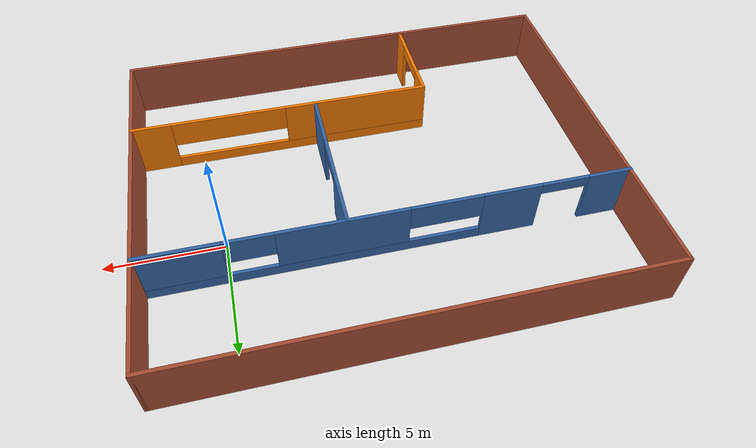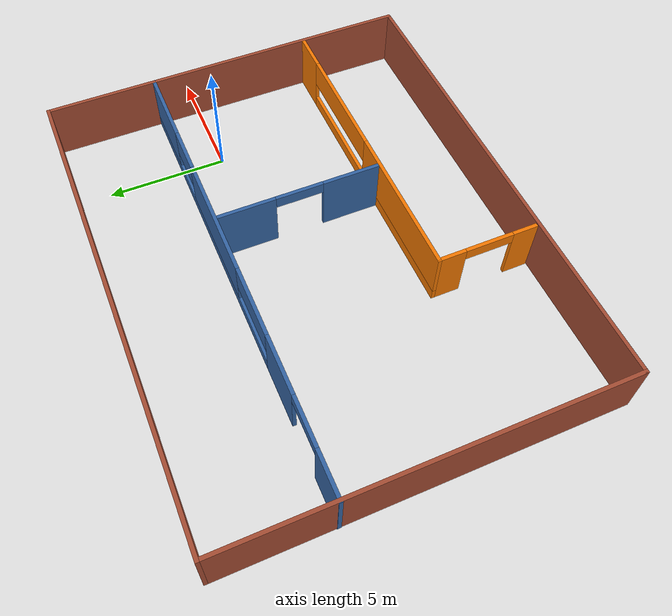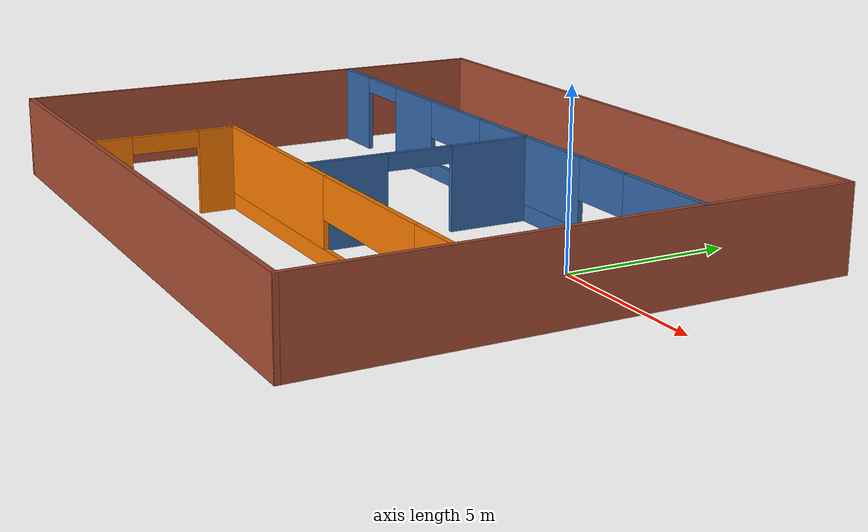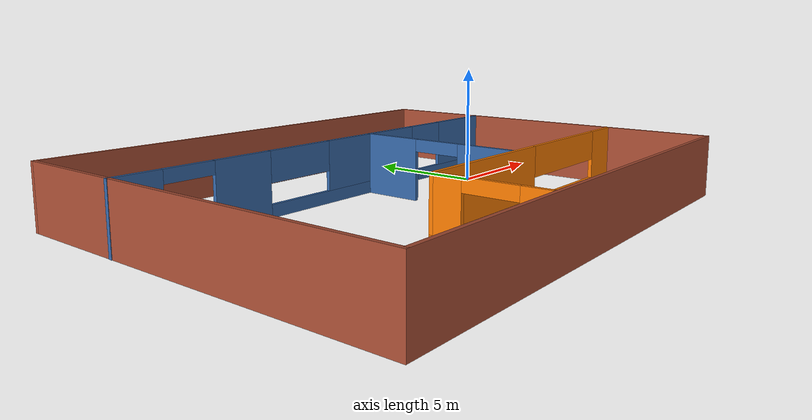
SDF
<?xml version='1.0'?>
<sdf version='1.7'>
  <model name='model'>
    <pose>-6.64054 -1.58835 0 0 -0 0</pose>
    <link name='Wall_0'>
      <collision name='Wall_0_Collision'>
        <geometry>
          <box>
            <size>20 0.15 2.5</size>
          </box>
        </geometry>
        <pose>0 0 1.25 0 -0 0</pose>
      </collision>
      <visual name='Wall_0_Visual'>
        <pose>0 0 1.25 0 -0 0</pose>
        <geometry>
          <box>
            <size>20 0.15 2.5</size>
          </box>
        </geometry>
        <material>
          <script>
            <uri>file://media/materials/scripts/gazebo.material</uri>
            <name>Gazebo/Bricks</name>
          </script>
          <ambient>1 1 1 1</ambient>
        </material>
        <meta>
          <layer>0</layer>
        </meta>
      </visual>
      <pose>0.010396 7.925 0 0 -0 0</pose>
    </link>
    <link name='Wall_1'>
      <collision name='Wall_1_Collision'>
        <geometry>
          <box>
            <size>16 0.15 2.5</size>
          </box>
        </geometry>
        <pose>0 0 1.25 0 -0 0</pose>
      </collision>
      <visual name='Wall_1_Visual'>
        <pose>0 0 1.25 0 -0 0</pose>
        <geometry>
          <box>
            <size>16 0.15 2.5</size>
          </box>
        </geometry>
        <material>
          <script>
            <uri>file://media/materials/scripts/gazebo.material</uri>
            <name>Gazebo/Bricks</name>
          </script>
          <ambient>1 1 1 1</ambient>
        </material>
        <meta>
          <layer>0</layer>
        </meta>
      </visual>
      <pose>9.9354 -0 0 0 -0 -1.5708</pose>
    </link>
    <link name='Wall_12'>
      <pose>3.37374 -3.64545 0 0 -0 3.14159</pose>
      <visual name='Wall_12_Visual_0'>
        <pose>-5.74309 0 1.25 0 -0 0</pose>
        <geometry>
          <box>
            <size>1.76382 0.15 2.5</size>
          </box>
        </geometry>
        <material>
          <script>
            <uri>file://media/materials/scripts/gazebo.material</uri>
            <name>Gazebo/Grey</name>
          </script>
          <ambient>0.960784 0.47451 0 1</ambient>
        </material>
        <meta>
          <layer>0</layer>
        </meta>
      </visual>
      <collision name='Wall_12_Collision_0'>
        <geometry>
          <box>
            <size>1.76382 0.15 2.5</size>
          </box>
        </geometry>
        <pose>-5.74309 0 1.25 0 -0 0</pose>
      </collision>
      <visual name='Wall_12_Visual_1'>
        <pose>0.881912 0 0.25 0 -0 0</pose>
        <geometry>
          <box>
            <size>11.4862 0.15 0.5</size>
          </box>
        </geometry>
        <material>
          <script>
            <uri>file://media/materials/scripts/gazebo.material</uri>
            <name>Gazebo/Grey</name>
          </script>
          <ambient>0.960784 0.47451 0 1</ambient>
        </material>
        <meta>
          <layer>0</layer>
        </meta>
      </visual>
      <collision name='Wall_12_Collision_1'>
        <geometry>
          <box>
            <size>11.4862 0.15 0.5</size>
          </box>
        </geometry>
        <pose>0.881912 0 0.25 0 -0 0</pose>
      </collision>
      <visual name='Wall_12_Visual_2'>
        <pose>3.38191 0 1.5 0 -0 0</pose>
        <geometry>
          <box>
            <size>6.48618 0.15 2</size>
          </box>
        </geometry>
        <material>
          <script>
            <uri>file://media/materials/scripts/gazebo.material</uri>
            <name>Gazebo/Grey</name>
          </script>
          <ambient>0.960784 0.47451 0 1</ambient>
        </material>
        <meta>
          <layer>0</layer>
        </meta>
      </visual>
      <collision name='Wall_12_Collision_2'>
        <geometry>
          <box>
            <size>6.48618 0.15 2</size>
          </box>
        </geometry>
        <pose>3.38191 0 1.5 0 -0 0</pose>
      </collision>
      <visual name='Wall_12_Visual_3'>
        <pose>-2.36117 0 1.9 0 -0 0</pose>
        <geometry>
          <box>
            <size>5 0.15 1.2</size>
          </box>
        </geometry>
        <material>
          <script>
            <uri>file://media/materials/scripts/gazebo.material</uri>
            <name>Gazebo/Grey</name>
          </script>
          <ambient>0.960784 0.47451 0 1</ambient>
        </material>
        <meta>
          <layer>0</layer>
        </meta>
      </visual>
      <collision name='Wall_12_Collision_3'>
        <geometry>
          <box>
            <size>5 0.15 1.2</size>
          </box>
        </geometry>
        <pose>-2.36117 0 1.9 0 -0 0</pose>
      </collision>
    </link>
    <link name='Wall_13'>
      <pose>-3.17626 -5.69545 0 0 -0 -1.5708</pose>
      <visual name='Wall_13_Visual_0'>
        <pose>-1.52493 0 1.25 0 -0 0</pose>
        <geometry>
          <box>
            <size>1.20014 0.15 2.5</size>
          </box>
        </geometry>
        <material>
          <script>
            <uri>file://media/materials/scripts/gazebo.material</uri>
            <name>Gazebo/Grey</name>
          </script>
          <ambient>0.960784 0.47451 0 1</ambient>
        </material>
        <meta>
          <layer>0</layer>
        </meta>
      </visual>
      <collision name='Wall_13_Collision_0'>
        <geometry>
          <box>
            <size>1.20014 0.15 2.5</size>
          </box>
        </geometry>
        <pose>-1.52493 0 1.25 0 -0 0</pose>
      </collision>
      <visual name='Wall_13_Visual_1'>
        <pose>1.60007 0 1.25 0 -0 0</pose>
        <geometry>
          <box>
            <size>1.04986 0.15 2.5</size>
          </box>
        </geometry>
        <material>
          <script>
            <uri>file://media/materials/scripts/gazebo.material</uri>
            <name>Gazebo/Grey</name>
          </script>
          <ambient>0.960784 0.47451 0 1</ambient>
        </material>
        <meta>
          <layer>0</layer>
        </meta>
      </visual>
      <collision name='Wall_13_Collision_1'>
        <geometry>
          <box>
            <size>1.04986 0.15 2.5</size>
          </box>
        </geometry>
        <pose>1.60007 0 1.25 0 -0 0</pose>
      </collision>
      <visual name='Wall_13_Visual_2'>
        <pose>0.075143 0 2.25 0 -0 0</pose>
        <geometry>
          <box>
            <size>2 0.15 0.5</size>
          </box>
        </geometry>
        <material>
          <script>
            <uri>file://media/materials/scripts/gazebo.material</uri>
            <name>Gazebo/Grey</name>
          </script>
          <ambient>0.960784 0.47451 0 1</ambient>
        </material>
        <meta>
          <layer>0</layer>
        </meta>
      </visual>
      <collision name='Wall_13_Collision_2'>
        <geometry>
          <box>
            <size>2 0.15 0.5</size>
          </box>
        </geometry>
        <pose>0.075143 0 2.25 0 -0 0</pose>
      </collision>
    </link>
    <link name='Wall_3'>
      <collision name='Wall_3_Collision'>
        <geometry>
          <box>
            <size>16 0.15 2.5</size>
          </box>
        </geometry>
        <pose>0 0 1.25 0 -0 0</pose>
      </collision>
      <visual name='Wall_3_Visual'>
        <pose>0 0 1.25 0 -0 0</pose>
        <geometry>
          <box>
            <size>16 0.15 2.5</size>
          </box>
        </geometry>
        <material>
          <script>
            <uri>file://media/materials/scripts/gazebo.material</uri>
            <name>Gazebo/Bricks</name>
          </script>
          <ambient>1 1 1 1</ambient>
        </material>
        <meta>
          <layer>0</layer>
        </meta>
      </visual>
      <pose>-9.9146 -0 0 0 -0 -1.5708</pose>
    </link>
    <link name='Wall_5'>
      <collision name='Wall_5_Collision'>
        <geometry>
          <box>
            <size>20 0.15 2.5</size>
          </box>
        </geometry>
        <pose>0 0 1.25 0 -0 0</pose>
      </collision>
      <visual name='Wall_5_Visual'>
        <pose>0 0 1.25 0 -0 0</pose>
        <geometry>
          <box>
            <size>20 0.15 2.5</size>
          </box>
        </geometry>
        <material>
          <script>
            <uri>file://media/materials/scripts/gazebo.material</uri>
            <name>Gazebo/Bricks</name>
          </script>
          <ambient>1 1 1 1</ambient>
        </material>
        <meta>
          <layer>0</layer>
        </meta>
      </visual>
      <pose>0.010396 -7.925 0 0 -0 0</pose>
    </link>
    <link name='Wall_7'>
      <pose>-0.010397 3.32139 0 0 -0 0</pose>
      <visual name='Wall_7_Visual_0'>
        <pose>-9.04575 0 1.25 0 -0 0</pose>
        <geometry>
          <box>
            <size>1.9085 0.15 2.5</size>
          </box>
        </geometry>
        <material>
          <script>
            <uri>file://media/materials/scripts/gazebo.material</uri>
            <name>Gazebo/Grey</name>
          </script>
          <ambient>0.203922 0.396078 0.643137 1</ambient>
        </material>
        <meta>
          <layer>0</layer>
        </meta>
      </visual>
      <collision name='Wall_7_Collision_0'>
        <geometry>
          <box>
            <size>1.9085 0.15 2.5</size>
          </box>
        </geometry>
        <pose>-9.04575 0 1.25 0 -0 0</pose>
      </collision>
      <visual name='Wall_7_Visual_1'>
        <pose>-4.86312 0 1.25 0 -0 0</pose>
        <geometry>
          <box>
            <size>2.45677 0.15 2.5</size>
          </box>
        </geometry>
        <material>
          <script>
            <uri>file://media/materials/scripts/gazebo.material</uri>
            <name>Gazebo/Grey</name>
          </script>
          <ambient>0.203922 0.396078 0.643137 1</ambient>
        </material>
        <meta>
          <layer>0</layer>
        </meta>
      </visual>
      <collision name='Wall_7_Collision_1'>
        <geometry>
          <box>
            <size>2.45677 0.15 2.5</size>
          </box>
        </geometry>
        <pose>-4.86312 0 1.25 0 -0 0</pose>
      </collision>
      <visual name='Wall_7_Visual_2'>
        <pose>3.18263 0 0.25 0 -0 0</pose>
        <geometry>
          <box>
            <size>13.6347 0.15 0.5</size>
          </box>
        </geometry>
        <material>
          <script>
            <uri>file://media/materials/scripts/gazebo.material</uri>
            <name>Gazebo/Grey</name>
          </script>
          <ambient>0.203922 0.396078 0.643137 1</ambient>
        </material>
        <meta>
          <layer>0</layer>
        </meta>
      </visual>
      <collision name='Wall_7_Collision_2'>
        <geometry>
          <box>
            <size>13.6347 0.15 0.5</size>
          </box>
        </geometry>
        <pose>3.18263 0 0.25 0 -0 0</pose>
      </collision>
      <visual name='Wall_7_Visual_3'>
        <pose>2.02011 0 1.5 0 -0 0</pose>
        <geometry>
          <box>
            <size>5.30969 0.15 2</size>
          </box>
        </geometry>
        <material>
          <script>
            <uri>file://media/materials/scripts/gazebo.material</uri>
            <name>Gazebo/Grey</name>
          </script>
          <ambient>0.203922 0.396078 0.643137 1</ambient>
        </material>
        <meta>
          <layer>0</layer>
        </meta>
      </visual>
      <collision name='Wall_7_Collision_3'>
        <geometry>
          <box>
            <size>5.30969 0.15 2</size>
          </box>
        </geometry>
        <pose>2.02011 0 1.5 0 -0 0</pose>
      </collision>
      <visual name='Wall_7_Visual_4'>
        <pose>8.33748 0 1.5 0 -0 0</pose>
        <geometry>
          <box>
            <size>3.32504 0.15 2</size>
          </box>
        </geometry>
        <material>
          <script>
            <uri>file://media/materials/scripts/gazebo.material</uri>
            <name>Gazebo/Grey</name>
          </script>
          <ambient>0.203922 0.396078 0.643137 1</ambient>
        </material>
        <meta>
          <layer>0</layer>
        </meta>
      </visual>
      <collision name='Wall_7_Collision_4'>
        <geometry>
          <box>
            <size>3.32504 0.15 2</size>
          </box>
        </geometry>
        <pose>8.33748 0 1.5 0 -0 0</pose>
      </collision>
      <visual name='Wall_7_Visual_5'>
        <pose>-2.13473 0 1.9 0 -0 0</pose>
        <geometry>
          <box>
            <size>3 0.15 1.2</size>
          </box>
        </geometry>
        <material>
          <script>
            <uri>file://media/materials/scripts/gazebo.material</uri>
            <name>Gazebo/Grey</name>
          </script>
          <ambient>0.203922 0.396078 0.643137 1</ambient>
        </material>
        <meta>
          <layer>0</layer>
        </meta>
      </visual>
      <collision name='Wall_7_Collision_5'>
        <geometry>
          <box>
            <size>3 0.15 1.2</size>
          </box>
        </geometry>
        <pose>-2.13473 0 1.9 0 -0 0</pose>
      </collision>
      <visual name='Wall_7_Visual_6'>
        <pose>5.67495 0 1.9 0 -0 0</pose>
        <geometry>
          <box>
            <size>2 0.15 1.2</size>
          </box>
        </geometry>
        <material>
          <script>
            <uri>file://media/materials/scripts/gazebo.material</uri>
            <name>Gazebo/Grey</name>
          </script>
          <ambient>0.203922 0.396078 0.643137 1</ambient>
        </material>
        <meta>
          <layer>0</layer>
        </meta>
      </visual>
      <collision name='Wall_7_Collision_6'>
        <geometry>
          <box>
            <size>2 0.15 1.2</size>
          </box>
        </geometry>
        <pose>5.67495 0 1.9 0 -0 0</pose>
      </collision>
      <visual name='Wall_7_Visual_7'>
        <pose>-7.0915 0 2.25 0 -0 0</pose>
        <geometry>
          <box>
            <size>2 0.15 0.5</size>
          </box>
        </geometry>
        <material>
          <script>
            <uri>file://media/materials/scripts/gazebo.material</uri>
            <name>Gazebo/Grey</name>
          </script>
          <ambient>0.203922 0.396078 0.643137 1</ambient>
        </material>
        <meta>
          <layer>0</layer>
        </meta>
      </visual>
      <collision name='Wall_7_Collision_7'>
        <geometry>
          <box>
            <size>2 0.15 0.5</size>
          </box>
        </geometry>
        <pose>-7.0915 0 2.25 0 -0 0</pose>
      </collision>
    </link>
    <link name='Wall_9'>
      <pose>1.8678 -0.105054 0 0 -0 -1.5708</pose>
      <visual name='Wall_9_Visual_0'>
        <pose>-2.22066 0 1.25 0 -0 0</pose>
        <geometry>
          <box>
            <size>2.55868 0.15 2.5</size>
          </box>
        </geometry>
        <material>
          <script>
            <uri>file://media/materials/scripts/gazebo.material</uri>
            <name>Gazebo/Grey</name>
          </script>
          <ambient>0.203922 0.396078 0.643137 1</ambient>
        </material>
        <meta>
          <layer>0</layer>
        </meta>
      </visual>
      <collision name='Wall_9_Collision_0'>
        <geometry>
          <box>
            <size>2.55868 0.15 2.5</size>
          </box>
        </geometry>
        <pose>-2.22066 0 1.25 0 -0 0</pose>
      </collision>
      <visual name='Wall_9_Visual_1'>
        <pose>2.27934 0 1.25 0 -0 0</pose>
        <geometry>
          <box>
            <size>2.44132 0.15 2.5</size>
          </box>
        </geometry>
        <material>
          <script>
            <uri>file://media/materials/scripts/gazebo.material</uri>
            <name>Gazebo/Grey</name>
          </script>
          <ambient>0.203922 0.396078 0.643137 1</ambient>
        </material>
        <meta>
          <layer>0</layer>
        </meta>
      </visual>
      <collision name='Wall_9_Collision_1'>
        <geometry>
          <box>
            <size>2.44132 0.15 2.5</size>
          </box>
        </geometry>
        <pose>2.27934 0 1.25 0 -0 0</pose>
      </collision>
      <visual name='Wall_9_Visual_2'>
        <pose>0.058682 0 2.25 0 -0 0</pose>
        <geometry>
          <box>
            <size>2 0.15 0.5</size>
          </box>
        </geometry>
        <material>
          <script>
            <uri>file://media/materials/scripts/gazebo.material</uri>
            <name>Gazebo/Grey</name>
          </script>
          <ambient>0.203922 0.396078 0.643137 1</ambient>
        </material>
        <meta>
          <layer>0</layer>
        </meta>
      </visual>
      <collision name='Wall_9_Collision_2'>
        <geometry>
          <box>
            <size>2 0.15 0.5</size>
          </box>
        </geometry>
        <pose>0.058682 0 2.25 0 -0 0</pose>
      </collision>
    </link>
    <static>1</static>
  </model>
</sdf>
